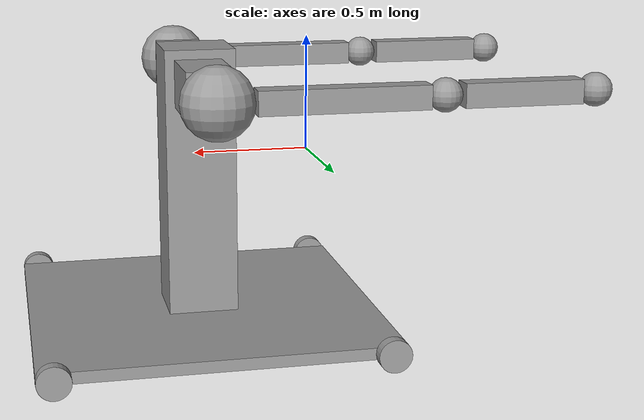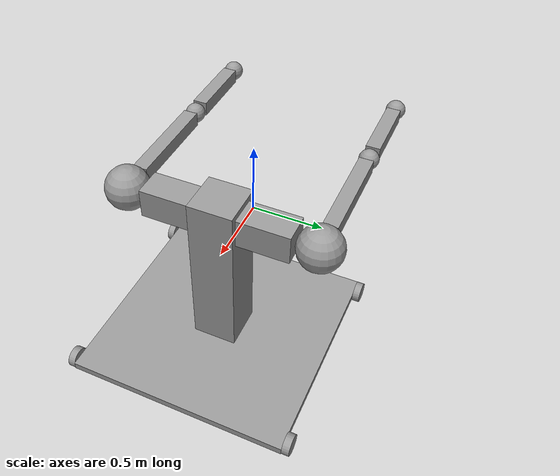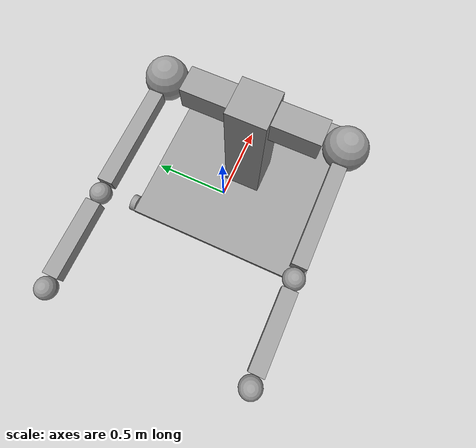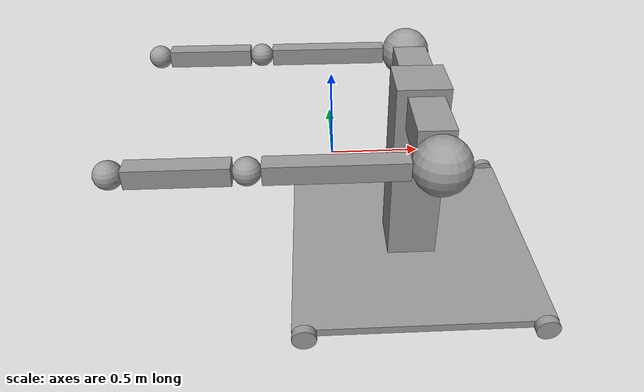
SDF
<?xml version='1.0'?>
<sdf version='1.6'>
  <model name='myrobot2'>
    <link name='link_0'>
      <pose frame=''>0.49 0 -0.703529 0 -0 0</pose>
      <inertial>
        <mass>1</mass>
        <inertia>
          <ixx>0.166667</ixx>
          <ixy>0</ixy>
          <ixz>0</ixz>
          <iyy>0.166667</iyy>
          <iyz>0</iyz>
          <izz>0.166667</izz>
        </inertia>
        <pose frame=''>0 0 0 0 -0 0</pose>
      </inertial>
      <gravity>1</gravity>
      <self_collide>0</self_collide>
      <kinematic>0</kinematic>
      <visual name='visual'>
        <pose frame=''>0 0 0 0 -0 0</pose>
        <geometry>
          <box>
            <size>1.5 1.5 0.05</size>
          </box>
        </geometry>
        <material>
          <lighting>1</lighting>
          <script>
            <uri>file://media/materials/scripts/gazebo.material</uri>
            <name>Gazebo/Grey</name>
          </script>
          <shader type='pixel'>
            <normal_map>__default__</normal_map>
          </shader>
          <ambient>0.3 0.3 0.3 1</ambient>
          <diffuse>0.7 0.7 0.7 1</diffuse>
          <specular>0.01 0.01 0.01 1</specular>
          <emissive>0 0 0 1</emissive>
        </material>
        <transparency>0</transparency>
        <cast_shadows>1</cast_shadows>
      </visual>
      <collision name='collision'>
        <laser_retro>0</laser_retro>
        <max_contacts>10</max_contacts>
        <pose frame=''>0 0 0 0 -0 0</pose>
        <geometry>
          <box>
            <size>1.5 1.5 0.05</size>
          </box>
        </geometry>
        <surface>
          <friction>
            <ode>
              <mu>1</mu>
              <mu2>1</mu2>
              <fdir1>0 0 0</fdir1>
              <slip1>0</slip1>
              <slip2>0</slip2>
            </ode>
            <torsional>
              <coefficient>1</coefficient>
              <patch_radius>0</patch_radius>
              <surface_radius>0</surface_radius>
              <use_patch_radius>1</use_patch_radius>
              <ode>
                <slip>0</slip>
              </ode>
            </torsional>
          </friction>
          <bounce>
            <restitution_coefficient>0</restitution_coefficient>
            <threshold>1e+06</threshold>
          </bounce>
          <contact>
            <collide_without_contact>0</collide_without_contact>
            <collide_without_contact_bitmask>1</collide_without_contact_bitmask>
            <collide_bitmask>1</collide_bitmask>
            <ode>
              <soft_cfm>0</soft_cfm>
              <soft_erp>0.2</soft_erp>
              <kp>1e+13</kp>
              <kd>1</kd>
              <max_vel>0.01</max_vel>
              <min_depth>0</min_depth>
            </ode>
            <bullet>
              <split_impulse>1</split_impulse>
              <split_impulse_penetration_threshold>-0.01</split_impulse_penetration_threshold>
              <soft_cfm>0</soft_cfm>
              <soft_erp>0.2</soft_erp>
              <kp>1e+13</kp>
              <kd>1</kd>
            </bullet>
          </contact>
        </surface>
      </collision>
    </link>
    <link name='link_1'>
      <pose frame=''>-0.19 -0.775014 -0.703529 1.5707 -0 0</pose>
      <inertial>
        <mass>1</mass>
        <inertia>
          <ixx>0.145833</ixx>
          <ixy>0</ixy>
          <ixz>0</ixz>
          <iyy>0.145833</iyy>
          <iyz>0</iyz>
          <izz>0.125</izz>
        </inertia>
        <pose frame=''>0 0 0 0 -0 0</pose>
      </inertial>
      <gravity>1</gravity>
      <self_collide>0</self_collide>
      <kinematic>0</kinematic>
      <visual name='visual'>
        <pose frame=''>0 0 0 0 -0 0</pose>
        <geometry>
          <cylinder>
            <radius>0.07</radius>
            <length>0.05</length>
          </cylinder>
        </geometry>
        <material>
          <lighting>1</lighting>
          <script>
            <uri>file://media/materials/scripts/gazebo.material</uri>
            <name>Gazebo/Grey</name>
          </script>
          <shader type='pixel'>
            <normal_map>__default__</normal_map>
          </shader>
          <ambient>0.3 0.3 0.3 1</ambient>
          <diffuse>0.7 0.7 0.7 1</diffuse>
          <specular>0.01 0.01 0.01 1</specular>
          <emissive>0 0 0 1</emissive>
        </material>
        <transparency>0</transparency>
        <cast_shadows>1</cast_shadows>
      </visual>
      <collision name='collision'>
        <laser_retro>0</laser_retro>
        <max_contacts>10</max_contacts>
        <pose frame=''>0 0 0 0 -0 0</pose>
        <geometry>
          <cylinder>
            <radius>0.07</radius>
            <length>0.05</length>
          </cylinder>
        </geometry>
        <surface>
          <friction>
            <ode>
              <mu>1</mu>
              <mu2>1</mu2>
              <fdir1>0 0 0</fdir1>
              <slip1>0</slip1>
              <slip2>0</slip2>
            </ode>
            <torsional>
              <coefficient>1</coefficient>
              <patch_radius>0</patch_radius>
              <surface_radius>0</surface_radius>
              <use_patch_radius>1</use_patch_radius>
              <ode>
                <slip>0</slip>
              </ode>
            </torsional>
          </friction>
          <bounce>
            <restitution_coefficient>0</restitution_coefficient>
            <threshold>1e+06</threshold>
          </bounce>
          <contact>
            <collide_without_contact>0</collide_without_contact>
            <collide_without_contact_bitmask>1</collide_without_contact_bitmask>
            <collide_bitmask>1</collide_bitmask>
            <ode>
              <soft_cfm>0</soft_cfm>
              <soft_erp>0.2</soft_erp>
              <kp>1e+13</kp>
              <kd>1</kd>
              <max_vel>0.01</max_vel>
              <min_depth>0</min_depth>
            </ode>
            <bullet>
              <split_impulse>1</split_impulse>
              <split_impulse_penetration_threshold>-0.01</split_impulse_penetration_threshold>
              <soft_cfm>0</soft_cfm>
              <soft_erp>0.2</soft_erp>
              <kp>1e+13</kp>
              <kd>1</kd>
            </bullet>
          </contact>
        </surface>
      </collision>
    </link>
    <link name='link_10'>
      <pose frame=''>-0.74 -0.65 0.331471 0 -0 0</pose>
      <inertial>
        <mass>1</mass>
        <inertia>
          <ixx>0.166667</ixx>
          <ixy>0</ixy>
          <ixz>0</ixz>
          <iyy>0.166667</iyy>
          <iyz>0</iyz>
          <izz>0.166667</izz>
        </inertia>
        <pose frame=''>0 0 0 0 -0 0</pose>
      </inertial>
      <gravity>1</gravity>
      <self_collide>0</self_collide>
      <kinematic>0</kinematic>
      <visual name='visual'>
        <pose frame=''>0 0 0 0 -0 0</pose>
        <geometry>
          <box>
            <size>0.5 0.1 0.1</size>
          </box>
        </geometry>
        <material>
          <lighting>1</lighting>
          <script>
            <uri>file://media/materials/scripts/gazebo.material</uri>
            <name>Gazebo/Grey</name>
          </script>
          <shader type='pixel'>
            <normal_map>__default__</normal_map>
          </shader>
          <ambient>0.3 0.3 0.3 1</ambient>
          <diffuse>0.7 0.7 0.7 1</diffuse>
          <specular>0.01 0.01 0.01 1</specular>
          <emissive>0 0 0 1</emissive>
        </material>
        <transparency>0</transparency>
        <cast_shadows>1</cast_shadows>
      </visual>
      <collision name='collision'>
        <laser_retro>0</laser_retro>
        <max_contacts>10</max_contacts>
        <pose frame=''>0 0 0 0 -0 0</pose>
        <geometry>
          <box>
            <size>0.5 0.1 0.1</size>
          </box>
        </geometry>
        <surface>
          <friction>
            <ode>
              <mu>1</mu>
              <mu2>1</mu2>
              <fdir1>0 0 0</fdir1>
              <slip1>0</slip1>
              <slip2>0</slip2>
            </ode>
            <torsional>
              <coefficient>1</coefficient>
              <patch_radius>0</patch_radius>
              <surface_radius>0</surface_radius>
              <use_patch_radius>1</use_patch_radius>
              <ode>
                <slip>0</slip>
              </ode>
            </torsional>
          </friction>
          <bounce>
            <restitution_coefficient>0</restitution_coefficient>
            <threshold>1e+06</threshold>
          </bounce>
          <contact>
            <collide_without_contact>0</collide_without_contact>
            <collide_without_contact_bitmask>1</collide_without_contact_bitmask>
            <collide_bitmask>1</collide_bitmask>
            <ode>
              <soft_cfm>0</soft_cfm>
              <soft_erp>0.2</soft_erp>
              <kp>1e+13</kp>
              <kd>1</kd>
              <max_vel>0.01</max_vel>
              <min_depth>0</min_depth>
            </ode>
            <bullet>
              <split_impulse>1</split_impulse>
              <split_impulse_penetration_threshold>-0.01</split_impulse_penetration_threshold>
              <soft_cfm>0</soft_cfm>
              <soft_erp>0.2</soft_erp>
              <kp>1e+13</kp>
              <kd>1</kd>
            </bullet>
          </contact>
        </surface>
      </collision>
    </link>
    <link name='link_10_clone'>
      <pose frame=''>-0.74 0.65 0.331471 0 -0 0</pose>
      <inertial>
        <mass>1</mass>
        <inertia>
          <ixx>0.166667</ixx>
          <ixy>0</ixy>
          <ixz>0</ixz>
          <iyy>0.166667</iyy>
          <iyz>0</iyz>
          <izz>0.166667</izz>
        </inertia>
        <pose frame=''>0 0 0 0 -0 0</pose>
      </inertial>
      <self_collide>0</self_collide>
      <kinematic>0</kinematic>
      <visual name='visual'>
        <pose frame=''>0 0 0 0 -0 0</pose>
        <geometry>
          <box>
            <size>0.5 0.1 0.1</size>
          </box>
        </geometry>
        <material>
          <lighting>1</lighting>
          <script>
            <uri>file://media/materials/scripts/gazebo.material</uri>
            <name>Gazebo/Grey</name>
          </script>
          <shader type='pixel'>
            <normal_map>__default__</normal_map>
          </shader>
          <ambient>0.3 0.3 0.3 1</ambient>
          <diffuse>0.7 0.7 0.7 1</diffuse>
          <specular>0.01 0.01 0.01 1</specular>
          <emissive>0 0 0 1</emissive>
        </material>
        <transparency>0</transparency>
        <cast_shadows>1</cast_shadows>
      </visual>
      <collision name='collision'>
        <laser_retro>0</laser_retro>
        <max_contacts>10</max_contacts>
        <pose frame=''>0 0 0 0 -0 0</pose>
        <geometry>
          <box>
            <size>0.5 0.1 0.1</size>
          </box>
        </geometry>
        <surface>
          <friction>
            <ode>
              <mu>1</mu>
              <mu2>1</mu2>
              <fdir1>0 0 0</fdir1>
              <slip1>0</slip1>
              <slip2>0</slip2>
            </ode>
            <torsional>
              <coefficient>1</coefficient>
              <patch_radius>0</patch_radius>
              <surface_radius>0</surface_radius>
              <use_patch_radius>1</use_patch_radius>
              <ode>
                <slip>0</slip>
              </ode>
            </torsional>
          </friction>
          <bounce>
            <restitution_coefficient>0</restitution_coefficient>
            <threshold>1e+06</threshold>
          </bounce>
          <contact>
            <collide_without_contact>0</collide_without_contact>
            <collide_without_contact_bitmask>1</collide_without_contact_bitmask>
            <collide_bitmask>1</collide_bitmask>
            <ode>
              <soft_cfm>0</soft_cfm>
              <soft_erp>0.2</soft_erp>
              <kp>1e+13</kp>
              <kd>1</kd>
              <max_vel>0.01</max_vel>
              <min_depth>0</min_depth>
            </ode>
            <bullet>
              <split_impulse>1</split_impulse>
              <split_impulse_penetration_threshold>-0.01</split_impulse_penetration_threshold>
              <soft_cfm>0</soft_cfm>
              <soft_erp>0.2</soft_erp>
              <kp>1e+13</kp>
              <kd>1</kd>
            </bullet>
          </contact>
        </surface>
      </collision>
    </link>
    <link name='link_1_clone'>
      <pose frame=''>1.17 -0.775007 -0.703529 1.5707 -0 0</pose>
      <inertial>
        <mass>1</mass>
        <inertia>
          <ixx>0.145833</ixx>
          <ixy>0</ixy>
          <ixz>0</ixz>
          <iyy>0.145833</iyy>
          <iyz>0</iyz>
          <izz>0.125</izz>
        </inertia>
        <pose frame=''>0 0 0 0 -0 0</pose>
      </inertial>
      <self_collide>0</self_collide>
      <kinematic>0</kinematic>
      <gravity>1</gravity>
      <visual name='visual'>
        <pose frame=''>0 0 0 0 -0 0</pose>
        <geometry>
          <cylinder>
            <radius>0.07</radius>
            <length>0.05</length>
          </cylinder>
        </geometry>
        <material>
          <lighting>1</lighting>
          <script>
            <uri>file://media/materials/scripts/gazebo.material</uri>
            <name>Gazebo/Grey</name>
          </script>
          <shader type='pixel'>
            <normal_map>__default__</normal_map>
          </shader>
          <ambient>0.3 0.3 0.3 1</ambient>
          <diffuse>0.7 0.7 0.7 1</diffuse>
          <specular>0.01 0.01 0.01 1</specular>
          <emissive>0 0 0 1</emissive>
        </material>
        <transparency>0</transparency>
        <cast_shadows>1</cast_shadows>
      </visual>
      <collision name='collision'>
        <laser_retro>0</laser_retro>
        <max_contacts>10</max_contacts>
        <pose frame=''>0 0 0 0 -0 0</pose>
        <geometry>
          <cylinder>
            <radius>0.07</radius>
            <length>0.05</length>
          </cylinder>
        </geometry>
        <surface>
          <friction>
            <ode>
              <mu>1</mu>
              <mu2>1</mu2>
              <fdir1>0 0 0</fdir1>
              <slip1>0</slip1>
              <slip2>0</slip2>
            </ode>
            <torsional>
              <coefficient>1</coefficient>
              <patch_radius>0</patch_radius>
              <surface_radius>0</surface_radius>
              <use_patch_radius>1</use_patch_radius>
              <ode>
                <slip>0</slip>
              </ode>
            </torsional>
          </friction>
          <bounce>
            <restitution_coefficient>0</restitution_coefficient>
            <threshold>1e+06</threshold>
          </bounce>
          <contact>
            <collide_without_contact>0</collide_without_contact>
            <collide_without_contact_bitmask>1</collide_without_contact_bitmask>
            <collide_bitmask>1</collide_bitmask>
            <ode>
              <soft_cfm>0</soft_cfm>
              <soft_erp>0.2</soft_erp>
              <kp>1e+13</kp>
              <kd>1</kd>
              <max_vel>0.01</max_vel>
              <min_depth>0</min_depth>
            </ode>
            <bullet>
              <split_impulse>1</split_impulse>
              <split_impulse_penetration_threshold>-0.01</split_impulse_penetration_threshold>
              <soft_cfm>0</soft_cfm>
              <soft_erp>0.2</soft_erp>
              <kp>1e+13</kp>
              <kd>1</kd>
            </bullet>
          </contact>
        </surface>
      </collision>
    </link>
    <link name='link_1_clone_0'>
      <pose frame=''>-0.19 0.775007 -0.703529 1.5707 -0 0</pose>
      <inertial>
        <mass>1</mass>
        <inertia>
          <ixx>0.145833</ixx>
          <ixy>0</ixy>
          <ixz>0</ixz>
          <iyy>0.145833</iyy>
          <iyz>0</iyz>
          <izz>0.125</izz>
        </inertia>
        <pose frame=''>0 0 0 0 -0 0</pose>
      </inertial>
      <self_collide>0</self_collide>
      <kinematic>0</kinematic>
      <gravity>1</gravity>
      <visual name='visual'>
        <pose frame=''>0 0 0 0 -0 0</pose>
        <geometry>
          <cylinder>
            <radius>0.07</radius>
            <length>0.05</length>
          </cylinder>
        </geometry>
        <material>
          <lighting>1</lighting>
          <script>
            <uri>file://media/materials/scripts/gazebo.material</uri>
            <name>Gazebo/Grey</name>
          </script>
          <shader type='pixel'>
            <normal_map>__default__</normal_map>
          </shader>
          <ambient>0.3 0.3 0.3 1</ambient>
          <diffuse>0.7 0.7 0.7 1</diffuse>
          <specular>0.01 0.01 0.01 1</specular>
          <emissive>0 0 0 1</emissive>
        </material>
        <transparency>0</transparency>
        <cast_shadows>1</cast_shadows>
      </visual>
      <collision name='collision'>
        <laser_retro>0</laser_retro>
        <max_contacts>10</max_contacts>
        <pose frame=''>0 0 0 0 -0 0</pose>
        <geometry>
          <cylinder>
            <radius>0.07</radius>
            <length>0.05</length>
          </cylinder>
        </geometry>
        <surface>
          <friction>
            <ode>
              <mu>1</mu>
              <mu2>1</mu2>
              <fdir1>0 0 0</fdir1>
              <slip1>0</slip1>
              <slip2>0</slip2>
            </ode>
            <torsional>
              <coefficient>1</coefficient>
              <patch_radius>0</patch_radius>
              <surface_radius>0</surface_radius>
              <use_patch_radius>1</use_patch_radius>
              <ode>
                <slip>0</slip>
              </ode>
            </torsional>
          </friction>
          <bounce>
            <restitution_coefficient>0</restitution_coefficient>
            <threshold>1e+06</threshold>
          </bounce>
          <contact>
            <collide_without_contact>0</collide_without_contact>
            <collide_without_contact_bitmask>1</collide_without_contact_bitmask>
            <collide_bitmask>1</collide_bitmask>
            <ode>
              <soft_cfm>0</soft_cfm>
              <soft_erp>0.2</soft_erp>
              <kp>1e+13</kp>
              <kd>1</kd>
              <max_vel>0.01</max_vel>
              <min_depth>0</min_depth>
            </ode>
            <bullet>
              <split_impulse>1</split_impulse>
              <split_impulse_penetration_threshold>-0.01</split_impulse_penetration_threshold>
              <soft_cfm>0</soft_cfm>
              <soft_erp>0.2</soft_erp>
              <kp>1e+13</kp>
              <kd>1</kd>
            </bullet>
          </contact>
        </surface>
      </collision>
    </link>
    <link name='link_1_clone_1'>
      <pose frame=''>1.17 0.775007 -0.703529 1.5707 -0 0</pose>
      <inertial>
        <mass>1</mass>
        <inertia>
          <ixx>0.145833</ixx>
          <ixy>0</ixy>
          <ixz>0</ixz>
          <iyy>0.145833</iyy>
          <iyz>0</iyz>
          <izz>0.125</izz>
        </inertia>
        <pose frame=''>0 0 0 0 -0 0</pose>
      </inertial>
      <self_collide>0</self_collide>
      <kinematic>0</kinematic>
      <gravity>1</gravity>
      <visual name='visual'>
        <pose frame=''>0 0 0 0 -0 0</pose>
        <geometry>
          <cylinder>
            <radius>0.07</radius>
            <length>0.05</length>
          </cylinder>
        </geometry>
        <material>
          <lighting>1</lighting>
          <script>
            <uri>file://media/materials/scripts/gazebo.material</uri>
            <name>Gazebo/Grey</name>
          </script>
          <shader type='pixel'>
            <normal_map>__default__</normal_map>
          </shader>
          <ambient>0.3 0.3 0.3 1</ambient>
          <diffuse>0.7 0.7 0.7 1</diffuse>
          <specular>0.01 0.01 0.01 1</specular>
          <emissive>0 0 0 1</emissive>
        </material>
        <transparency>0</transparency>
        <cast_shadows>1</cast_shadows>
      </visual>
      <collision name='collision'>
        <laser_retro>0</laser_retro>
        <max_contacts>10</max_contacts>
        <pose frame=''>0 0 0 0 -0 0</pose>
        <geometry>
          <cylinder>
            <radius>0.07</radius>
            <length>0.05</length>
          </cylinder>
        </geometry>
        <surface>
          <friction>
            <ode>
              <mu>1</mu>
              <mu2>1</mu2>
              <fdir1>0 0 0</fdir1>
              <slip1>0</slip1>
              <slip2>0</slip2>
            </ode>
            <torsional>
              <coefficient>1</coefficient>
              <patch_radius>0</patch_radius>
              <surface_radius>0</surface_radius>
              <use_patch_radius>1</use_patch_radius>
              <ode>
                <slip>0</slip>
              </ode>
            </torsional>
          </friction>
          <bounce>
            <restitution_coefficient>0</restitution_coefficient>
            <threshold>1e+06</threshold>
          </bounce>
          <contact>
            <collide_without_contact>0</collide_without_contact>
            <collide_without_contact_bitmask>1</collide_without_contact_bitmask>
            <collide_bitmask>1</collide_bitmask>
            <ode>
              <soft_cfm>0</soft_cfm>
              <soft_erp>0.2</soft_erp>
              <kp>1e+13</kp>
              <kd>1</kd>
              <max_vel>0.01</max_vel>
              <min_depth>0</min_depth>
            </ode>
            <bullet>
              <split_impulse>1</split_impulse>
              <split_impulse_penetration_threshold>-0.01</split_impulse_penetration_threshold>
              <soft_cfm>0</soft_cfm>
              <soft_erp>0.2</soft_erp>
              <kp>1e+13</kp>
              <kd>1</kd>
            </bullet>
          </contact>
        </surface>
      </collision>
    </link>
    <link name='link_2'>
      <pose frame=''>0.49 0 -0.128529 0 -0 0</pose>
      <inertial>
        <mass>1</mass>
        <inertia>
          <ixx>0.166667</ixx>
          <ixy>0</ixy>
          <ixz>0</ixz>
          <iyy>0.166667</iyy>
          <iyz>0</iyz>
          <izz>0.166667</izz>
        </inertia>
        <pose frame=''>0 0 0 0 -0 0</pose>
      </inertial>
      <gravity>1</gravity>
      <self_collide>0</self_collide>
      <kinematic>0</kinematic>
      <visual name='visual'>
        <pose frame=''>0 0 0 0 -0 0</pose>
        <geometry>
          <box>
            <size>0.3 0.3 1.2</size>
          </box>
        </geometry>
        <material>
          <lighting>1</lighting>
          <script>
            <uri>file://media/materials/scripts/gazebo.material</uri>
            <name>Gazebo/Grey</name>
          </script>
          <shader type='pixel'>
            <normal_map>__default__</normal_map>
          </shader>
          <ambient>0.3 0.3 0.3 1</ambient>
          <diffuse>0.7 0.7 0.7 1</diffuse>
          <specular>0.01 0.01 0.01 1</specular>
          <emissive>0 0 0 1</emissive>
        </material>
        <transparency>0</transparency>
        <cast_shadows>1</cast_shadows>
      </visual>
      <collision name='collision'>
        <laser_retro>0</laser_retro>
        <max_contacts>10</max_contacts>
        <pose frame=''>0 0 0 0 -0 0</pose>
        <geometry>
          <box>
            <size>0.3 0.3 1.2</size>
          </box>
        </geometry>
        <surface>
          <friction>
            <ode>
              <mu>1</mu>
              <mu2>1</mu2>
              <fdir1>0 0 0</fdir1>
              <slip1>0</slip1>
              <slip2>0</slip2>
            </ode>
            <torsional>
              <coefficient>1</coefficient>
              <patch_radius>0</patch_radius>
              <surface_radius>0</surface_radius>
              <use_patch_radius>1</use_patch_radius>
              <ode>
                <slip>0</slip>
              </ode>
            </torsional>
          </friction>
          <bounce>
            <restitution_coefficient>0</restitution_coefficient>
            <threshold>1e+06</threshold>
          </bounce>
          <contact>
            <collide_without_contact>0</collide_without_contact>
            <collide_without_contact_bitmask>1</collide_without_contact_bitmask>
            <collide_bitmask>1</collide_bitmask>
            <ode>
              <soft_cfm>0</soft_cfm>
              <soft_erp>0.2</soft_erp>
              <kp>1e+13</kp>
              <kd>1</kd>
              <max_vel>0.01</max_vel>
              <min_depth>0</min_depth>
            </ode>
            <bullet>
              <split_impulse>1</split_impulse>
              <split_impulse_penetration_threshold>-0.01</split_impulse_penetration_threshold>
              <soft_cfm>0</soft_cfm>
              <soft_erp>0.2</soft_erp>
              <kp>1e+13</kp>
              <kd>1</kd>
            </bullet>
          </contact>
        </surface>
      </collision>
    </link>
    <link name='link_4'>
      <pose frame=''>0.5 0 0.331471 0 -0 0</pose>
      <inertial>
        <mass>1</mass>
        <inertia>
          <ixx>0.166667</ixx>
          <ixy>0</ixy>
          <ixz>0</ixz>
          <iyy>0.166667</iyy>
          <iyz>0</iyz>
          <izz>0.166667</izz>
        </inertia>
        <pose frame=''>0 0 0 0 -0 0</pose>
      </inertial>
      <gravity>1</gravity>
      <self_collide>0</self_collide>
      <kinematic>0</kinematic>
      <visual name='visual'>
        <pose frame=''>0 0 0 0 -0 0</pose>
        <geometry>
          <box>
            <size>0.2 1 0.2</size>
          </box>
        </geometry>
        <material>
          <lighting>1</lighting>
          <script>
            <uri>file://media/materials/scripts/gazebo.material</uri>
            <name>Gazebo/Grey</name>
          </script>
          <shader type='pixel'>
            <normal_map>__default__</normal_map>
          </shader>
          <ambient>0.3 0.3 0.3 1</ambient>
          <diffuse>0.7 0.7 0.7 1</diffuse>
          <specular>0.01 0.01 0.01 1</specular>
          <emissive>0 0 0 1</emissive>
        </material>
        <transparency>0</transparency>
        <cast_shadows>1</cast_shadows>
      </visual>
      <collision name='collision'>
        <laser_retro>0</laser_retro>
        <max_contacts>10</max_contacts>
        <pose frame=''>0 0 0 0 -0 0</pose>
        <geometry>
          <box>
            <size>0.2 1 0.2</size>
          </box>
        </geometry>
        <surface>
          <friction>
            <ode>
              <mu>1</mu>
              <mu2>1</mu2>
              <fdir1>0 0 0</fdir1>
              <slip1>0</slip1>
              <slip2>0</slip2>
            </ode>
            <torsional>
              <coefficient>1</coefficient>
              <patch_radius>0</patch_radius>
              <surface_radius>0</surface_radius>
              <use_patch_radius>1</use_patch_radius>
              <ode>
                <slip>0</slip>
              </ode>
            </torsional>
          </friction>
          <bounce>
            <restitution_coefficient>0</restitution_coefficient>
            <threshold>1e+06</threshold>
          </bounce>
          <contact>
            <collide_without_contact>0</collide_without_contact>
            <collide_without_contact_bitmask>1</collide_without_contact_bitmask>
            <collide_bitmask>1</collide_bitmask>
            <ode>
              <soft_cfm>0</soft_cfm>
              <soft_erp>0.2</soft_erp>
              <kp>1e+13</kp>
              <kd>1</kd>
              <max_vel>0.01</max_vel>
              <min_depth>0</min_depth>
            </ode>
            <bullet>
              <split_impulse>1</split_impulse>
              <split_impulse_penetration_threshold>-0.01</split_impulse_penetration_threshold>
              <soft_cfm>0</soft_cfm>
              <soft_erp>0.2</soft_erp>
              <kp>1e+13</kp>
              <kd>1</kd>
            </bullet>
          </contact>
        </surface>
      </collision>
    </link>
    <link name='link_5'>
      <pose frame=''>0.5 -0.65 0.331471 0 -0 0</pose>
      <inertial>
        <mass>1</mass>
        <inertia>
          <ixx>0.1</ixx>
          <ixy>0</ixy>
          <ixz>0</ixz>
          <iyy>0.1</iyy>
          <iyz>0</iyz>
          <izz>0.1</izz>
        </inertia>
        <pose frame=''>0 0 0 0 -0 0</pose>
      </inertial>
      <gravity>1</gravity>
      <self_collide>0</self_collide>
      <kinematic>0</kinematic>
      <visual name='visual'>
        <pose frame=''>0 0 0 0 -0 0</pose>
        <geometry>
          <sphere>
            <radius>0.15</radius>
          </sphere>
        </geometry>
        <material>
          <lighting>1</lighting>
          <script>
            <uri>file://media/materials/scripts/gazebo.material</uri>
            <name>Gazebo/Grey</name>
          </script>
          <shader type='pixel'>
            <normal_map>__default__</normal_map>
          </shader>
          <ambient>0.3 0.3 0.3 1</ambient>
          <diffuse>0.7 0.7 0.7 1</diffuse>
          <specular>0.01 0.01 0.01 1</specular>
          <emissive>0 0 0 1</emissive>
        </material>
        <transparency>0</transparency>
        <cast_shadows>1</cast_shadows>
      </visual>
      <collision name='collision'>
        <laser_retro>0</laser_retro>
        <max_contacts>10</max_contacts>
        <pose frame=''>0 0 0 0 -0 0</pose>
        <geometry>
          <sphere>
            <radius>0.15</radius>
          </sphere>
        </geometry>
        <surface>
          <friction>
            <ode>
              <mu>1</mu>
              <mu2>1</mu2>
              <fdir1>0 0 0</fdir1>
              <slip1>0</slip1>
              <slip2>0</slip2>
            </ode>
            <torsional>
              <coefficient>1</coefficient>
              <patch_radius>0</patch_radius>
              <surface_radius>0</surface_radius>
              <use_patch_radius>1</use_patch_radius>
              <ode>
                <slip>0</slip>
              </ode>
            </torsional>
          </friction>
          <bounce>
            <restitution_coefficient>0</restitution_coefficient>
            <threshold>1e+06</threshold>
          </bounce>
          <contact>
            <collide_without_contact>0</collide_without_contact>
            <collide_without_contact_bitmask>1</collide_without_contact_bitmask>
            <collide_bitmask>1</collide_bitmask>
            <ode>
              <soft_cfm>0</soft_cfm>
              <soft_erp>0.2</soft_erp>
              <kp>1e+13</kp>
              <kd>1</kd>
              <max_vel>0.01</max_vel>
              <min_depth>0</min_depth>
            </ode>
            <bullet>
              <split_impulse>1</split_impulse>
              <split_impulse_penetration_threshold>-0.01</split_impulse_penetration_threshold>
              <soft_cfm>0</soft_cfm>
              <soft_erp>0.2</soft_erp>
              <kp>1e+13</kp>
              <kd>1</kd>
            </bullet>
          </contact>
        </surface>
      </collision>
    </link>
    <link name='link_5_clone'>
      <pose frame=''>0.5 0.65 0.331471 0 -0 0</pose>
      <inertial>
        <mass>1</mass>
        <inertia>
          <ixx>0.1</ixx>
          <ixy>0</ixy>
          <ixz>0</ixz>
          <iyy>0.1</iyy>
          <iyz>0</iyz>
          <izz>0.1</izz>
        </inertia>
        <pose frame=''>0 0 0 0 -0 0</pose>
      </inertial>
      <self_collide>0</self_collide>
      <kinematic>0</kinematic>
      <visual name='visual'>
        <pose frame=''>0 0 0 0 -0 0</pose>
        <geometry>
          <sphere>
            <radius>0.15</radius>
          </sphere>
        </geometry>
        <material>
          <lighting>1</lighting>
          <script>
            <uri>file://media/materials/scripts/gazebo.material</uri>
            <name>Gazebo/Grey</name>
          </script>
          <shader type='pixel'>
            <normal_map>__default__</normal_map>
          </shader>
          <ambient>0.3 0.3 0.3 1</ambient>
          <diffuse>0.7 0.7 0.7 1</diffuse>
          <specular>0.01 0.01 0.01 1</specular>
          <emissive>0 0 0 1</emissive>
        </material>
        <transparency>0</transparency>
        <cast_shadows>1</cast_shadows>
      </visual>
      <collision name='collision'>
        <laser_retro>0</laser_retro>
        <max_contacts>10</max_contacts>
        <pose frame=''>0 0 0 0 -0 0</pose>
        <geometry>
          <sphere>
            <radius>0.15</radius>
          </sphere>
        </geometry>
        <surface>
          <friction>
            <ode>
              <mu>1</mu>
              <mu2>1</mu2>
              <fdir1>0 0 0</fdir1>
              <slip1>0</slip1>
              <slip2>0</slip2>
            </ode>
            <torsional>
              <coefficient>1</coefficient>
              <patch_radius>0</patch_radius>
              <surface_radius>0</surface_radius>
              <use_patch_radius>1</use_patch_radius>
              <ode>
                <slip>0</slip>
              </ode>
            </torsional>
          </friction>
          <bounce>
            <restitution_coefficient>0</restitution_coefficient>
            <threshold>1e+06</threshold>
          </bounce>
          <contact>
            <collide_without_contact>0</collide_without_contact>
            <collide_without_contact_bitmask>1</collide_without_contact_bitmask>
            <collide_bitmask>1</collide_bitmask>
            <ode>
              <soft_cfm>0</soft_cfm>
              <soft_erp>0.2</soft_erp>
              <kp>1e+13</kp>
              <kd>1</kd>
              <max_vel>0.01</max_vel>
              <min_depth>0</min_depth>
            </ode>
            <bullet>
              <split_impulse>1</split_impulse>
              <split_impulse_penetration_threshold>-0.01</split_impulse_penetration_threshold>
              <soft_cfm>0</soft_cfm>
              <soft_erp>0.2</soft_erp>
              <kp>1e+13</kp>
              <kd>1</kd>
            </bullet>
          </contact>
        </surface>
      </collision>
    </link>
    <link name='link_8'>
      <pose frame=''>-0 -0.65 0.331471 0 -0 0</pose>
      <inertial>
        <mass>1</mass>
        <inertia>
          <ixx>0.166667</ixx>
          <ixy>0</ixy>
          <ixz>0</ixz>
          <iyy>0.166667</iyy>
          <iyz>0</iyz>
          <izz>0.166667</izz>
        </inertia>
        <pose frame=''>0 0 0 0 -0 0</pose>
      </inertial>
      <gravity>1</gravity>
      <self_collide>0</self_collide>
      <kinematic>0</kinematic>
      <visual name='visual'>
        <pose frame=''>0 0 0 0 -0 0</pose>
        <geometry>
          <box>
            <size>0.7 0.1 0.1</size>
          </box>
        </geometry>
        <material>
          <lighting>1</lighting>
          <script>
            <uri>file://media/materials/scripts/gazebo.material</uri>
            <name>Gazebo/Grey</name>
          </script>
          <shader type='pixel'>
            <normal_map>__default__</normal_map>
          </shader>
          <ambient>0.3 0.3 0.3 1</ambient>
          <diffuse>0.7 0.7 0.7 1</diffuse>
          <specular>0.01 0.01 0.01 1</specular>
          <emissive>0 0 0 1</emissive>
        </material>
        <transparency>0</transparency>
        <cast_shadows>1</cast_shadows>
      </visual>
      <collision name='collision'>
        <laser_retro>0</laser_retro>
        <max_contacts>10</max_contacts>
        <pose frame=''>0 0 0 0 -0 0</pose>
        <geometry>
          <box>
            <size>0.7 0.1 0.1</size>
          </box>
        </geometry>
        <surface>
          <friction>
            <ode>
              <mu>1</mu>
              <mu2>1</mu2>
              <fdir1>0 0 0</fdir1>
              <slip1>0</slip1>
              <slip2>0</slip2>
            </ode>
            <torsional>
              <coefficient>1</coefficient>
              <patch_radius>0</patch_radius>
              <surface_radius>0</surface_radius>
              <use_patch_radius>1</use_patch_radius>
              <ode>
                <slip>0</slip>
              </ode>
            </torsional>
          </friction>
          <bounce>
            <restitution_coefficient>0</restitution_coefficient>
            <threshold>1e+06</threshold>
          </bounce>
          <contact>
            <collide_without_contact>0</collide_without_contact>
            <collide_without_contact_bitmask>1</collide_without_contact_bitmask>
            <collide_bitmask>1</collide_bitmask>
            <ode>
              <soft_cfm>0</soft_cfm>
              <soft_erp>0.2</soft_erp>
              <kp>1e+13</kp>
              <kd>1</kd>
              <max_vel>0.01</max_vel>
              <min_depth>0</min_depth>
            </ode>
            <bullet>
              <split_impulse>1</split_impulse>
              <split_impulse_penetration_threshold>-0.01</split_impulse_penetration_threshold>
              <soft_cfm>0</soft_cfm>
              <soft_erp>0.2</soft_erp>
              <kp>1e+13</kp>
              <kd>1</kd>
            </bullet>
          </contact>
        </surface>
      </collision>
    </link>
    <link name='link_8_clone'>
      <pose frame=''>-0 0.65 0.331471 0 -0 0</pose>
      <inertial>
        <mass>1</mass>
        <inertia>
          <ixx>0.166667</ixx>
          <ixy>0</ixy>
          <ixz>0</ixz>
          <iyy>0.166667</iyy>
          <iyz>0</iyz>
          <izz>0.166667</izz>
        </inertia>
        <pose frame=''>0 0 0 0 -0 0</pose>
      </inertial>
      <self_collide>0</self_collide>
      <kinematic>0</kinematic>
      <gravity>1</gravity>
      <visual name='visual'>
        <pose frame=''>0 0 0 0 -0 0</pose>
        <geometry>
          <box>
            <size>0.7 0.1 0.1</size>
          </box>
        </geometry>
        <material>
          <lighting>1</lighting>
          <script>
            <uri>file://media/materials/scripts/gazebo.material</uri>
            <name>Gazebo/Grey</name>
          </script>
          <shader type='pixel'>
            <normal_map>__default__</normal_map>
          </shader>
          <ambient>0.3 0.3 0.3 1</ambient>
          <diffuse>0.7 0.7 0.7 1</diffuse>
          <specular>0.01 0.01 0.01 1</specular>
          <emissive>0 0 0 1</emissive>
        </material>
        <transparency>0</transparency>
        <cast_shadows>1</cast_shadows>
      </visual>
      <collision name='collision'>
        <laser_retro>0</laser_retro>
        <max_contacts>10</max_contacts>
        <pose frame=''>0 0 0 0 -0 0</pose>
        <geometry>
          <box>
            <size>0.7 0.1 0.1</size>
          </box>
        </geometry>
        <surface>
          <friction>
            <ode>
              <mu>1</mu>
              <mu2>1</mu2>
              <fdir1>0 0 0</fdir1>
              <slip1>0</slip1>
              <slip2>0</slip2>
            </ode>
            <torsional>
              <coefficient>1</coefficient>
              <patch_radius>0</patch_radius>
              <surface_radius>0</surface_radius>
              <use_patch_radius>1</use_patch_radius>
              <ode>
                <slip>0</slip>
              </ode>
            </torsional>
          </friction>
          <bounce>
            <restitution_coefficient>0</restitution_coefficient>
            <threshold>1e+06</threshold>
          </bounce>
          <contact>
            <collide_without_contact>0</collide_without_contact>
            <collide_without_contact_bitmask>1</collide_without_contact_bitmask>
            <collide_bitmask>1</collide_bitmask>
            <ode>
              <soft_cfm>0</soft_cfm>
              <soft_erp>0.2</soft_erp>
              <kp>1e+13</kp>
              <kd>1</kd>
              <max_vel>0.01</max_vel>
              <min_depth>0</min_depth>
            </ode>
            <bullet>
              <split_impulse>1</split_impulse>
              <split_impulse_penetration_threshold>-0.01</split_impulse_penetration_threshold>
              <soft_cfm>0</soft_cfm>
              <soft_erp>0.2</soft_erp>
              <kp>1e+13</kp>
              <kd>1</kd>
            </bullet>
          </contact>
        </surface>
      </collision>
    </link>
    <link name='link_9'>
      <pose frame=''>-0.42 0.65 0.331471 0 -0 0</pose>
      <inertial>
        <mass>1</mass>
        <inertia>
          <ixx>0.1</ixx>
          <ixy>0</ixy>
          <ixz>0</ixz>
          <iyy>0.1</iyy>
          <iyz>0</iyz>
          <izz>0.1</izz>
        </inertia>
        <pose frame=''>0 0 0 0 -0 0</pose>
      </inertial>
      <gravity>1</gravity>
      <self_collide>0</self_collide>
      <kinematic>0</kinematic>
      <visual name='visual'>
        <pose frame=''>0 0 0 0 -0 0</pose>
        <geometry>
          <sphere>
            <radius>0.07</radius>
          </sphere>
        </geometry>
        <material>
          <lighting>1</lighting>
          <script>
            <uri>file://media/materials/scripts/gazebo.material</uri>
            <name>Gazebo/Grey</name>
          </script>
          <shader type='pixel'>
            <normal_map>__default__</normal_map>
          </shader>
          <ambient>0.3 0.3 0.3 1</ambient>
          <diffuse>0.7 0.7 0.7 1</diffuse>
          <specular>0.01 0.01 0.01 1</specular>
          <emissive>0 0 0 1</emissive>
        </material>
        <transparency>0</transparency>
        <cast_shadows>1</cast_shadows>
      </visual>
      <collision name='collision'>
        <laser_retro>0</laser_retro>
        <max_contacts>10</max_contacts>
        <pose frame=''>0 0 0 0 -0 0</pose>
        <geometry>
          <sphere>
            <radius>0.07</radius>
          </sphere>
        </geometry>
        <surface>
          <friction>
            <ode>
              <mu>1</mu>
              <mu2>1</mu2>
              <fdir1>0 0 0</fdir1>
              <slip1>0</slip1>
              <slip2>0</slip2>
            </ode>
            <torsional>
              <coefficient>1</coefficient>
              <patch_radius>0</patch_radius>
              <surface_radius>0</surface_radius>
              <use_patch_radius>1</use_patch_radius>
              <ode>
                <slip>0</slip>
              </ode>
            </torsional>
          </friction>
          <bounce>
            <restitution_coefficient>0</restitution_coefficient>
            <threshold>1e+06</threshold>
          </bounce>
          <contact>
            <collide_without_contact>0</collide_without_contact>
            <collide_without_contact_bitmask>1</collide_without_contact_bitmask>
            <collide_bitmask>1</collide_bitmask>
            <ode>
              <soft_cfm>0</soft_cfm>
              <soft_erp>0.2</soft_erp>
              <kp>1e+13</kp>
              <kd>1</kd>
              <max_vel>0.01</max_vel>
              <min_depth>0</min_depth>
            </ode>
            <bullet>
              <split_impulse>1</split_impulse>
              <split_impulse_penetration_threshold>-0.01</split_impulse_penetration_threshold>
              <soft_cfm>0</soft_cfm>
              <soft_erp>0.2</soft_erp>
              <kp>1e+13</kp>
              <kd>1</kd>
            </bullet>
          </contact>
        </surface>
      </collision>
    </link>
    <link name='link_9_clone'>
      <pose frame=''>-0.42 -0.65 0.331471 0 -0 0</pose>
      <inertial>
        <mass>1</mass>
        <inertia>
          <ixx>0.1</ixx>
          <ixy>0</ixy>
          <ixz>0</ixz>
          <iyy>0.1</iyy>
          <iyz>0</iyz>
          <izz>0.1</izz>
        </inertia>
        <pose frame=''>0 0 0 0 -0 0</pose>
      </inertial>
      <self_collide>0</self_collide>
      <kinematic>0</kinematic>
      <visual name='visual'>
        <pose frame=''>0 0 0 0 -0 0</pose>
        <geometry>
          <sphere>
            <radius>0.07</radius>
          </sphere>
        </geometry>
        <material>
          <lighting>1</lighting>
          <script>
            <uri>file://media/materials/scripts/gazebo.material</uri>
            <name>Gazebo/Grey</name>
          </script>
          <shader type='pixel'>
            <normal_map>__default__</normal_map>
          </shader>
          <ambient>0.3 0.3 0.3 1</ambient>
          <diffuse>0.7 0.7 0.7 1</diffuse>
          <specular>0.01 0.01 0.01 1</specular>
          <emissive>0 0 0 1</emissive>
        </material>
        <transparency>0</transparency>
        <cast_shadows>1</cast_shadows>
      </visual>
      <collision name='collision'>
        <laser_retro>0</laser_retro>
        <max_contacts>10</max_contacts>
        <pose frame=''>0 0 0 0 -0 0</pose>
        <geometry>
          <sphere>
            <radius>0.07</radius>
          </sphere>
        </geometry>
        <surface>
          <friction>
            <ode>
              <mu>1</mu>
              <mu2>1</mu2>
              <fdir1>0 0 0</fdir1>
              <slip1>0</slip1>
              <slip2>0</slip2>
            </ode>
            <torsional>
              <coefficient>1</coefficient>
              <patch_radius>0</patch_radius>
              <surface_radius>0</surface_radius>
              <use_patch_radius>1</use_patch_radius>
              <ode>
                <slip>0</slip>
              </ode>
            </torsional>
          </friction>
          <bounce>
            <restitution_coefficient>0</restitution_coefficient>
            <threshold>1e+06</threshold>
          </bounce>
          <contact>
            <collide_without_contact>0</collide_without_contact>
            <collide_without_contact_bitmask>1</collide_without_contact_bitmask>
            <collide_bitmask>1</collide_bitmask>
            <ode>
              <soft_cfm>0</soft_cfm>
              <soft_erp>0.2</soft_erp>
              <kp>1e+13</kp>
              <kd>1</kd>
              <max_vel>0.01</max_vel>
              <min_depth>0</min_depth>
            </ode>
            <bullet>
              <split_impulse>1</split_impulse>
              <split_impulse_penetration_threshold>-0.01</split_impulse_penetration_threshold>
              <soft_cfm>0</soft_cfm>
              <soft_erp>0.2</soft_erp>
              <kp>1e+13</kp>
              <kd>1</kd>
            </bullet>
          </contact>
        </surface>
      </collision>
    </link>
    <link name='link_9_clone_0'>
      <pose frame=''>-1.06 0.65 0.331471 0 -0 0</pose>
      <inertial>
        <mass>1</mass>
        <inertia>
          <ixx>0.1</ixx>
          <ixy>0</ixy>
          <ixz>0</ixz>
          <iyy>0.1</iyy>
          <iyz>0</iyz>
          <izz>0.1</izz>
        </inertia>
        <pose frame=''>0 0 0 0 -0 0</pose>
      </inertial>
      <self_collide>0</self_collide>
      <kinematic>0</kinematic>
      <visual name='visual'>
        <pose frame=''>0 0 0 0 -0 0</pose>
        <geometry>
          <sphere>
            <radius>0.07</radius>
          </sphere>
        </geometry>
        <material>
          <lighting>1</lighting>
          <script>
            <uri>file://media/materials/scripts/gazebo.material</uri>
            <name>Gazebo/Grey</name>
          </script>
          <shader type='pixel'>
            <normal_map>__default__</normal_map>
          </shader>
          <ambient>0.3 0.3 0.3 1</ambient>
          <diffuse>0.7 0.7 0.7 1</diffuse>
          <specular>0.01 0.01 0.01 1</specular>
          <emissive>0 0 0 1</emissive>
        </material>
        <transparency>0</transparency>
        <cast_shadows>1</cast_shadows>
      </visual>
      <collision name='collision'>
        <laser_retro>0</laser_retro>
        <max_contacts>10</max_contacts>
        <pose frame=''>0 0 0 0 -0 0</pose>
        <geometry>
          <sphere>
            <radius>0.07</radius>
          </sphere>
        </geometry>
        <surface>
          <friction>
            <ode>
              <mu>1</mu>
              <mu2>1</mu2>
              <fdir1>0 0 0</fdir1>
              <slip1>0</slip1>
              <slip2>0</slip2>
            </ode>
            <torsional>
              <coefficient>1</coefficient>
              <patch_radius>0</patch_radius>
              <surface_radius>0</surface_radius>
              <use_patch_radius>1</use_patch_radius>
              <ode>
                <slip>0</slip>
              </ode>
            </torsional>
          </friction>
          <bounce>
            <restitution_coefficient>0</restitution_coefficient>
            <threshold>1e+06</threshold>
          </bounce>
          <contact>
            <collide_without_contact>0</collide_without_contact>
            <collide_without_contact_bitmask>1</collide_without_contact_bitmask>
            <collide_bitmask>1</collide_bitmask>
            <ode>
              <soft_cfm>0</soft_cfm>
              <soft_erp>0.2</soft_erp>
              <kp>1e+13</kp>
              <kd>1</kd>
              <max_vel>0.01</max_vel>
              <min_depth>0</min_depth>
            </ode>
            <bullet>
              <split_impulse>1</split_impulse>
              <split_impulse_penetration_threshold>-0.01</split_impulse_penetration_threshold>
              <soft_cfm>0</soft_cfm>
              <soft_erp>0.2</soft_erp>
              <kp>1e+13</kp>
              <kd>1</kd>
            </bullet>
          </contact>
        </surface>
      </collision>
    </link>
    <link name='link_9_clone_0_clone'>
      <pose frame=''>-1.06 -0.65 0.331471 0 -0 0</pose>
      <inertial>
        <mass>1</mass>
        <inertia>
          <ixx>0.1</ixx>
          <ixy>0</ixy>
          <ixz>0</ixz>
          <iyy>0.1</iyy>
          <iyz>0</iyz>
          <izz>0.1</izz>
        </inertia>
        <pose frame=''>0 0 0 0 -0 0</pose>
      </inertial>
      <self_collide>0</self_collide>
      <kinematic>0</kinematic>
      <visual name='visual'>
        <pose frame=''>0 0 0 0 -0 0</pose>
        <geometry>
          <sphere>
            <radius>0.07</radius>
          </sphere>
        </geometry>
        <material>
          <lighting>1</lighting>
          <script>
            <uri>file://media/materials/scripts/gazebo.material</uri>
            <name>Gazebo/Grey</name>
          </script>
          <shader type='pixel'>
            <normal_map>__default__</normal_map>
          </shader>
          <ambient>0.3 0.3 0.3 1</ambient>
          <diffuse>0.7 0.7 0.7 1</diffuse>
          <specular>0.01 0.01 0.01 1</specular>
          <emissive>0 0 0 1</emissive>
        </material>
        <transparency>0</transparency>
        <cast_shadows>1</cast_shadows>
      </visual>
      <collision name='collision'>
        <laser_retro>0</laser_retro>
        <max_contacts>10</max_contacts>
        <pose frame=''>0 0 0 0 -0 0</pose>
        <geometry>
          <sphere>
            <radius>0.07</radius>
          </sphere>
        </geometry>
        <surface>
          <friction>
            <ode>
              <mu>1</mu>
              <mu2>1</mu2>
              <fdir1>0 0 0</fdir1>
              <slip1>0</slip1>
              <slip2>0</slip2>
            </ode>
            <torsional>
              <coefficient>1</coefficient>
              <patch_radius>0</patch_radius>
              <surface_radius>0</surface_radius>
              <use_patch_radius>1</use_patch_radius>
              <ode>
                <slip>0</slip>
              </ode>
            </torsional>
          </friction>
          <bounce>
            <restitution_coefficient>0</restitution_coefficient>
            <threshold>1e+06</threshold>
          </bounce>
          <contact>
            <collide_without_contact>0</collide_without_contact>
            <collide_without_contact_bitmask>1</collide_without_contact_bitmask>
            <collide_bitmask>1</collide_bitmask>
            <ode>
              <soft_cfm>0</soft_cfm>
              <soft_erp>0.2</soft_erp>
              <kp>1e+13</kp>
              <kd>1</kd>
              <max_vel>0.01</max_vel>
              <min_depth>0</min_depth>
            </ode>
            <bullet>
              <split_impulse>1</split_impulse>
              <split_impulse_penetration_threshold>-0.01</split_impulse_penetration_threshold>
              <soft_cfm>0</soft_cfm>
              <soft_erp>0.2</soft_erp>
              <kp>1e+13</kp>
              <kd>1</kd>
            </bullet>
          </contact>
        </surface>
      </collision>
    </link>
    <joint name='link_0_JOINT_0' type='revolute'>
      <parent>link_0</parent>
      <child>link_1</child>
      <pose frame=''>0 0 0 0 -0 0</pose>
      <axis>
        <xyz>0 0 1</xyz>
        <use_parent_model_frame>0</use_parent_model_frame>
        <limit>
          <lower>-1.79769e+308</lower>
          <upper>1.79769e+308</upper>
          <effort>-1</effort>
          <velocity>-1</velocity>
        </limit>
        <dynamics>
          <spring_reference>0</spring_reference>
          <spring_stiffness>0</spring_stiffness>
          <damping>0</damping>
        </dynamics>
      </axis>
      <physics>
        <ode>
          <limit>
            <cfm>0</cfm>
            <erp>0.2</erp>
          </limit>
          <suspension>
            <cfm>0</cfm>
            <erp>0.2</erp>
          </suspension>
        </ode>
      </physics>
    </joint>
    <joint name='link_0_JOINT_1' type='revolute'>
      <parent>link_0</parent>
      <child>link_1_clone</child>
      <pose frame=''>0 0 0 0 -0 0</pose>
      <axis>
        <xyz>0 0 1</xyz>
        <use_parent_model_frame>0</use_parent_model_frame>
        <limit>
          <lower>-1.79769e+308</lower>
          <upper>1.79769e+308</upper>
          <effort>-1</effort>
          <velocity>-1</velocity>
        </limit>
        <dynamics>
          <spring_reference>0</spring_reference>
          <spring_stiffness>0</spring_stiffness>
          <damping>0</damping>
        </dynamics>
      </axis>
      <physics>
        <ode>
          <limit>
            <cfm>0</cfm>
            <erp>0.2</erp>
          </limit>
          <suspension>
            <cfm>0</cfm>
            <erp>0.2</erp>
          </suspension>
        </ode>
      </physics>
    </joint>
    <joint name='link_0_JOINT_2' type='revolute'>
      <parent>link_0</parent>
      <child>link_1_clone_1</child>
      <pose frame=''>0 0 0 0 -0 0</pose>
      <axis>
        <xyz>0 0 1</xyz>
        <use_parent_model_frame>0</use_parent_model_frame>
        <limit>
          <lower>-1.79769e+308</lower>
          <upper>1.79769e+308</upper>
          <effort>-1</effort>
          <velocity>-1</velocity>
        </limit>
        <dynamics>
          <spring_reference>0</spring_reference>
          <spring_stiffness>0</spring_stiffness>
          <damping>0</damping>
        </dynamics>
      </axis>
      <physics>
        <ode>
          <limit>
            <cfm>0</cfm>
            <erp>0.2</erp>
          </limit>
          <suspension>
            <cfm>0</cfm>
            <erp>0.2</erp>
          </suspension>
        </ode>
      </physics>
    </joint>
    <joint name='link_0_JOINT_3' type='revolute'>
      <parent>link_0</parent>
      <child>link_1_clone_0</child>
      <pose frame=''>0 0 0 0 -0 0</pose>
      <axis>
        <xyz>1 0 0</xyz>
        <use_parent_model_frame>0</use_parent_model_frame>
        <limit>
          <lower>-1.79769e+308</lower>
          <upper>1.79769e+308</upper>
          <effort>-1</effort>
          <velocity>-1</velocity>
        </limit>
        <dynamics>
          <spring_reference>0</spring_reference>
          <spring_stiffness>0</spring_stiffness>
          <damping>0</damping>
        </dynamics>
      </axis>
      <physics>
        <ode>
          <limit>
            <cfm>0</cfm>
            <erp>0.2</erp>
          </limit>
          <suspension>
            <cfm>0</cfm>
            <erp>0.2</erp>
          </suspension>
        </ode>
      </physics>
    </joint>
    <joint name='link_0_JOINT_4' type='fixed'>
      <parent>link_0</parent>
      <child>link_2</child>
      <pose frame=''>0 0 0 0 -0 0</pose>
      <physics>
        <ode>
          <limit>
            <cfm>0</cfm>
            <erp>0.2</erp>
          </limit>
          <suspension>
            <cfm>0</cfm>
            <erp>0.2</erp>
          </suspension>
        </ode>
      </physics>
    </joint>
    <joint name='link_10_JOINT_26' type='fixed'>
      <parent>link_10</parent>
      <child>link_9_clone_0_clone</child>
      <pose frame=''>0 0 0 0 -0 0</pose>
      <physics>
        <ode>
          <limit>
            <cfm>0</cfm>
            <erp>0.2</erp>
          </limit>
          <suspension>
            <cfm>0</cfm>
            <erp>0.2</erp>
          </suspension>
        </ode>
      </physics>
    </joint>
    <joint name='link_10_clone_JOINT_30' type='fixed'>
      <parent>link_10_clone</parent>
      <child>link_9_clone_0</child>
      <pose frame=''>0 0 0 0 -0 0</pose>
      <physics>
        <ode>
          <limit>
            <cfm>0</cfm>
            <erp>0.2</erp>
          </limit>
          <suspension>
            <cfm>0</cfm>
            <erp>0.2</erp>
          </suspension>
        </ode>
      </physics>
    </joint>
    <joint name='link_2_JOINT_5' type='fixed'>
      <parent>link_2</parent>
      <child>link_4</child>
      <pose frame=''>0 0 0 0 -0 0</pose>
      <physics>
        <ode>
          <limit>
            <cfm>0</cfm>
            <erp>0.2</erp>
          </limit>
          <suspension>
            <cfm>0</cfm>
            <erp>0.2</erp>
          </suspension>
        </ode>
      </physics>
    </joint>
    <joint name='link_4_JOINT_21' type='revolute'>
      <parent>link_4</parent>
      <child>link_5</child>
      <pose frame=''>0 0 0 0 -0 0</pose>
      <axis>
        <xyz>0 1 0</xyz>
        <use_parent_model_frame>0</use_parent_model_frame>
        <limit>
          <lower>-1.79769e+308</lower>
          <upper>1.79769e+308</upper>
          <effort>-1</effort>
          <velocity>-1</velocity>
        </limit>
        <dynamics>
          <spring_reference>0</spring_reference>
          <spring_stiffness>0</spring_stiffness>
          <damping>0</damping>
        </dynamics>
      </axis>
      <physics>
        <ode>
          <limit>
            <cfm>0</cfm>
            <erp>0.2</erp>
          </limit>
          <suspension>
            <cfm>0</cfm>
            <erp>0.2</erp>
          </suspension>
        </ode>
      </physics>
    </joint>
    <joint name='link_4_JOINT_22' type='revolute'>
      <parent>link_4</parent>
      <child>link_5_clone</child>
      <pose frame=''>0 0 0 0 -0 0</pose>
      <axis>
        <xyz>0 1 0</xyz>
        <use_parent_model_frame>0</use_parent_model_frame>
        <limit>
          <lower>-1.79769e+308</lower>
          <upper>1.79769e+308</upper>
          <effort>-1</effort>
          <velocity>-1</velocity>
        </limit>
        <dynamics>
          <spring_reference>0</spring_reference>
          <spring_stiffness>0</spring_stiffness>
          <damping>0</damping>
        </dynamics>
      </axis>
      <physics>
        <ode>
          <limit>
            <cfm>0</cfm>
            <erp>0.2</erp>
          </limit>
          <suspension>
            <cfm>0</cfm>
            <erp>0.2</erp>
          </suspension>
        </ode>
      </physics>
    </joint>
    <joint name='link_5_JOINT_23' type='fixed'>
      <parent>link_5</parent>
      <child>link_8</child>
      <pose frame=''>0 0 0 0 -0 0</pose>
      <physics>
        <ode>
          <limit>
            <cfm>0</cfm>
            <erp>0.2</erp>
          </limit>
          <suspension>
            <cfm>0</cfm>
            <erp>0.2</erp>
          </suspension>
        </ode>
      </physics>
    </joint>
    <joint name='link_5_clone_JOINT_27' type='fixed'>
      <parent>link_5_clone</parent>
      <child>link_8_clone</child>
      <pose frame=''>0 0 0 0 -0 0</pose>
      <physics>
        <ode>
          <limit>
            <cfm>0</cfm>
            <erp>0.2</erp>
          </limit>
          <suspension>
            <cfm>0</cfm>
            <erp>0.2</erp>
          </suspension>
        </ode>
      </physics>
    </joint>
    <joint name='link_8_JOINT_24' type='revolute'>
      <parent>link_8</parent>
      <child>link_9_clone</child>
      <pose frame=''>0 0 0 0 -0 0</pose>
      <axis>
        <xyz>0 0 1</xyz>
        <use_parent_model_frame>0</use_parent_model_frame>
        <limit>
          <lower>-1.79769e+308</lower>
          <upper>1.79769e+308</upper>
          <effort>-1</effort>
          <velocity>-1</velocity>
        </limit>
        <dynamics>
          <spring_reference>0</spring_reference>
          <spring_stiffness>0</spring_stiffness>
          <damping>0</damping>
        </dynamics>
      </axis>
      <physics>
        <ode>
          <limit>
            <cfm>0</cfm>
            <erp>0.2</erp>
          </limit>
          <suspension>
            <cfm>0</cfm>
            <erp>0.2</erp>
          </suspension>
        </ode>
      </physics>
    </joint>
    <joint name='link_8_clone_JOINT_28' type='revolute'>
      <parent>link_8_clone</parent>
      <child>link_9</child>
      <pose frame=''>0 0 0 0 -0 0</pose>
      <axis>
        <xyz>0 0 1</xyz>
        <use_parent_model_frame>0</use_parent_model_frame>
        <limit>
          <lower>-1.79769e+308</lower>
          <upper>1.79769e+308</upper>
          <effort>-1</effort>
          <velocity>-1</velocity>
        </limit>
        <dynamics>
          <spring_reference>0</spring_reference>
          <spring_stiffness>0</spring_stiffness>
          <damping>0</damping>
        </dynamics>
      </axis>
      <physics>
        <ode>
          <limit>
            <cfm>0</cfm>
            <erp>0.2</erp>
          </limit>
          <suspension>
            <cfm>0</cfm>
            <erp>0.2</erp>
          </suspension>
        </ode>
      </physics>
    </joint>
    <joint name='link_9_JOINT_29' type='fixed'>
      <parent>link_9</parent>
      <child>link_10_clone</child>
      <pose frame=''>0 0 0 0 -0 0</pose>
      <physics>
        <ode>
          <limit>
            <cfm>0</cfm>
            <erp>0.2</erp>
          </limit>
          <suspension>
            <cfm>0</cfm>
            <erp>0.2</erp>
          </suspension>
        </ode>
      </physics>
    </joint>
    <joint name='link_9_clone_JOINT_25' type='fixed'>
      <parent>link_9_clone</parent>
      <child>link_10</child>
      <pose frame=''>0 0 0 0 -0 0</pose>
      <physics>
        <ode>
          <limit>
            <cfm>0</cfm>
            <erp>0.2</erp>
          </limit>
          <suspension>
            <cfm>0</cfm>
            <erp>0.2</erp>
          </suspension>
        </ode>
      </physics>
    </joint>
    <static>0</static>
    <allow_auto_disable>1</allow_auto_disable>
  </model>
</sdf>
